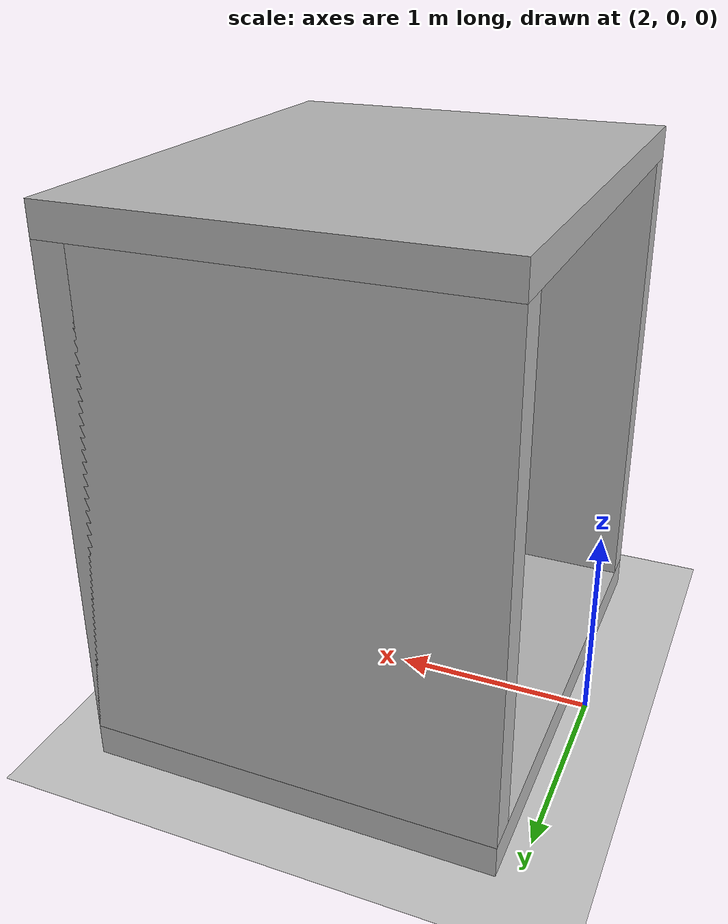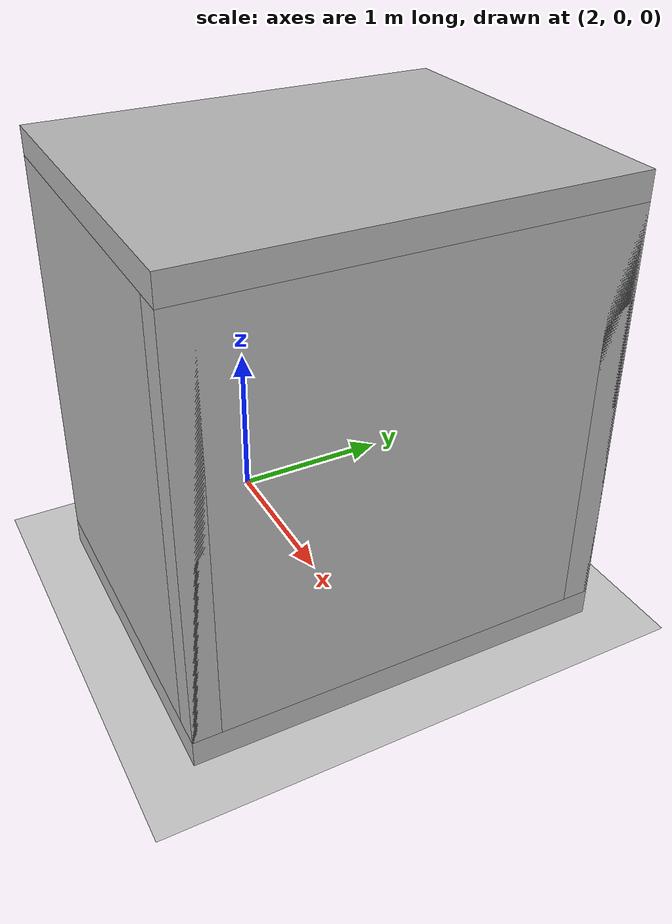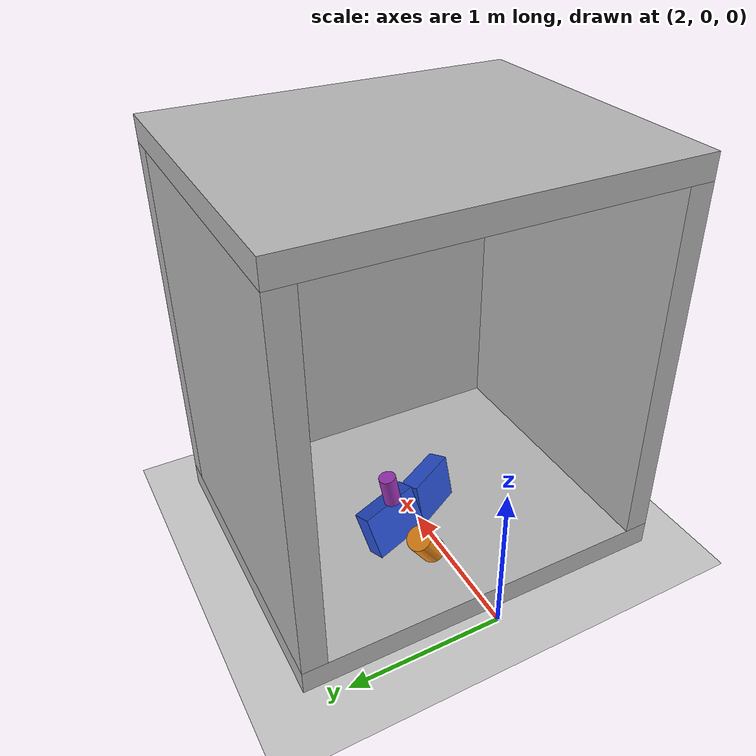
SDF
<sdf version="1.6">
 <world name="default">
  <light name="sun" type="directional">
   <pose>0 0 10 0 -0 0</pose>
   <diffuse>0.8 0.8 0.8 1</diffuse>
   <specular>0.1 0.1 0.1 1</specular>
   <attenuation>
    <range>1000</range>
    <constant>0.9</constant>
    <linear>0.01</linear>
    <quadratic>0.001</quadratic>
   </attenuation>
   <direction>-0.5 0.5 -1</direction>
  </light>
  <model name="ground_plane">
   <static>1</static>
   <link name="link">
    <collision name="collision">
     <geometry><plane><normal>0 0 1</normal><size>100 100</size></plane></geometry>
     <surface><friction><ode><mu>100</mu><mu2>50</mu2></ode></friction></surface>
    </collision>
    <visual name="visual">
     <cast_shadows>0</cast_shadows>
     <geometry><plane><normal>0 0 1</normal><size>100 100</size></plane></geometry>
     <material>
      <script><uri>file://media/materials/scripts/gazebo.material</uri><name>Gazebo/Grey</name></script>
     </material>
    </visual>
   </link>
  </model>
  <physics name="default_physics" default="0" type="ode">
   <real_time_update_rate>0</real_time_update_rate>
   <max_step_size>0.001</max_step_size>
   <real_time_factor>1</real_time_factor>
  </physics>
  <gravity>0 0 -9.8</gravity>
  <magnetic_field>6e-06 2.3e-05 -4.2e-05</magnetic_field>
  <atmosphere type="adiabatic"/>
  <scene><ambient>0.4 0.4 0.4 1</ambient><background>0.7 0.7 0.7 1</background><shadows>1</shadows></scene>
  <spherical_coordinates>
   <surface_model>EARTH_WGS84</surface_model>
   <latitude_deg>0</latitude_deg>
   <longitude_deg>0</longitude_deg>
   <elevation>0</elevation>
   <heading_deg>0</heading_deg>
  </spherical_coordinates>
  <model name="container">
   <link name="container">
    <inertial>
     <pose>0.22439 0 1.64098 0 -0 0</pose>
     <mass>205</mass>
     <inertia>
      <ixx>329.883</ixx>
      <ixy>1.59439e-15</ixy>
      <ixz>12.9249</ixz>
      <iyy>229.817</iyy>
      <iyz>1.16598e-14</iyz>
      <izz>267.609</izz>
     </inertia>
    </inertial>
    <collision name="container_back_collision">
     <pose>0.92 0 1.36 0 -0 0</pose>
     <geometry><box><size>0.16 2.45 2.4</size></box></geometry>
    </collision>
    <collision name="container_bottom_collision_1">
     <pose>0 0 0.08 0 -0 0</pose>
     <geometry><box><size>2 2.45 0.16</size></box></geometry>
    </collision>
    <collision name="container_left_collision_2">
     <pose>0 1.145 1.36 0 -0 0</pose>
     <geometry><box><size>2 0.16 2.4</size></box></geometry>
    </collision>
    <collision name="container_right_collision_3">
     <pose>0 -1.145 1.36 0 -0 0</pose>
     <geometry><box><size>2 0.16 2.4</size></box></geometry>
    </collision>
    <collision name="container_top_collision_4">
     <pose>0 0 2.64 0 -0 0</pose>
     <geometry><box><size>2 2.45 0.16</size></box></geometry>
    </collision>
    <visual name="container_back_visual">
     <pose>0.92 0 1.36 0 -0 0</pose>
     <geometry><box><size>0.16 2.45 2.4</size></box></geometry>
    </visual>
    <visual name="container_bottom_visual_1">
     <pose>0 0 0.08 0 -0 0</pose>
     <geometry><box><size>2 2.45 0.16</size></box></geometry>
    </visual>
    <visual name="container_left_visual_2">
     <pose>0 1.145 1.36 0 -0 0</pose>
     <geometry><box><size>2 0.16 2.4</size></box></geometry>
    </visual>
    <visual name="container_right_visual_3">
     <pose>0 -1.145 1.36 0 -0 0</pose>
     <geometry><box><size>2 0.16 2.4</size></box></geometry>
    </visual>
    <visual name="container_top_visual_4">
     <pose>0 0 2.64 0 -0 0</pose>
     <geometry><box><size>2 2.45 0.16</size></box></geometry>
    </visual>
   </link>
   <pose>3.08974 0.008821 -0 0 0 -0.002455</pose>
  </model>
  <model name="roblog-dhl-box-blue-simple-0-2400">
   <link name="link">
    <inertial>
     <mass>0.25</mass>
     <inertia>
      <ixx>0.00218083</ixx>
      <ixy>0</ixy>
      <ixz>0</ixz>
      <iyy>0.00473308</iyy>
      <iyz>0</iyz>
      <izz>0.00321375</izz>
     </inertia>
    </inertial>
    <collision name="link_collision"><geometry><box><size>0.372 0.126 0.298</size></box></geometry></collision>
    <visual name="link_visual">
     <geometry><box><size>0.372 0.126 0.298</size></box></geometry>
     <material>
      <script><name>Gazebo/Blue</name><uri>file://media/materials/scripts/gazebo.material</uri></script>
     </material>
    </visual>
   </link>
   <pose>2.91969 -0.019756 0.318188 -0.192081 0.000533 -1.05746</pose>
  </model>
  <model name="roblog-dhl-box-blue-simple-1-2401">
   <link name="link">
    <inertial>
     <mass>0.25</mass>
     <inertia>
      <ixx>0.00218083</ixx>
      <ixy>0</ixy>
      <ixz>0</ixz>
      <iyy>0.00473308</iyy>
      <iyz>0</iyz>
      <izz>0.00321375</izz>
     </inertia>
    </inertial>
    <collision name="link_collision"><geometry><box><size>0.372 0.126 0.298</size></box></geometry></collision>
    <visual name="link_visual">
     <geometry><box><size>0.372 0.126 0.298</size></box></geometry>
     <material>
      <script><name>Gazebo/Blue</name><uri>file://media/materials/scripts/gazebo.material</uri></script>
     </material>
    </visual>
   </link>
   <pose>2.75416 0.337288 0.346922 -0.290726 -0.150846 -1.32388</pose>
  </model>
  <model name="roblog-vanish-detergent-simple-2-2402">
   <link name="link">
    <inertial>
     <mass>0.08</mass>
     <inertia>
      <ixx>0.000324987</ixx>
      <ixy>0</ixy>
      <ixz>0</ixz>
      <iyy>0.000324987</iyy>
      <iyz>0</iyz>
      <izz>0.00011664</izz>
     </inertia>
    </inertial>
    <collision name="link_collision">
     <geometry><cylinder><length>0.2</length><radius>0.054</radius></cylinder></geometry>
    </collision>
    <visual name="link_visual">
     <geometry><cylinder><length>0.2</length><radius>0.054</radius></cylinder></geometry>
     <material>
      <script><name>Gazebo/PurpleGlow</name><uri>file://media/materials/scripts/gazebo.material</uri></script>
     </material>
    </visual>
    <velocity_decay><linear>0.005</linear><angular>0.005</angular></velocity_decay>
   </link>
   <pose>2.74953 0.341819 0.609419 -0.166793 -0.047721 -0.466951</pose>
  </model>
  <model name="roblog-maisels-barrel-simple-3-2403">
   <link name="link">
    <inertial>
     <mass>0.54</mass>
     <inertia>
      <ixx>0.00354312</ixx>
      <ixy>0</ixy>
      <ixz>0</ixz>
      <iyy>0.00354312</iyy>
      <iyz>0</iyz>
      <izz>0.00181548</izz>
     </inertia>
    </inertial>
    <collision name="link_collision">
     <geometry><cylinder><length>0.242</length><radius>0.082</radius></cylinder></geometry>
    </collision>
    <visual name="link_visual">
     <geometry><cylinder><length>0.242</length><radius>0.082</radius></cylinder></geometry>
     <material>
      <script><name>Gazebo/Orange</name><uri>file://media/materials/scripts/gazebo.material</uri></script>
     </material>
    </visual>
    <velocity_decay><linear>0.005</linear><angular>0.005</angular></velocity_decay>
   </link>
   <pose>2.49452 0.226146 0.306164 -0.081491 -0.583378 -1.07556</pose>
  </model>
 </world>
</sdf>
